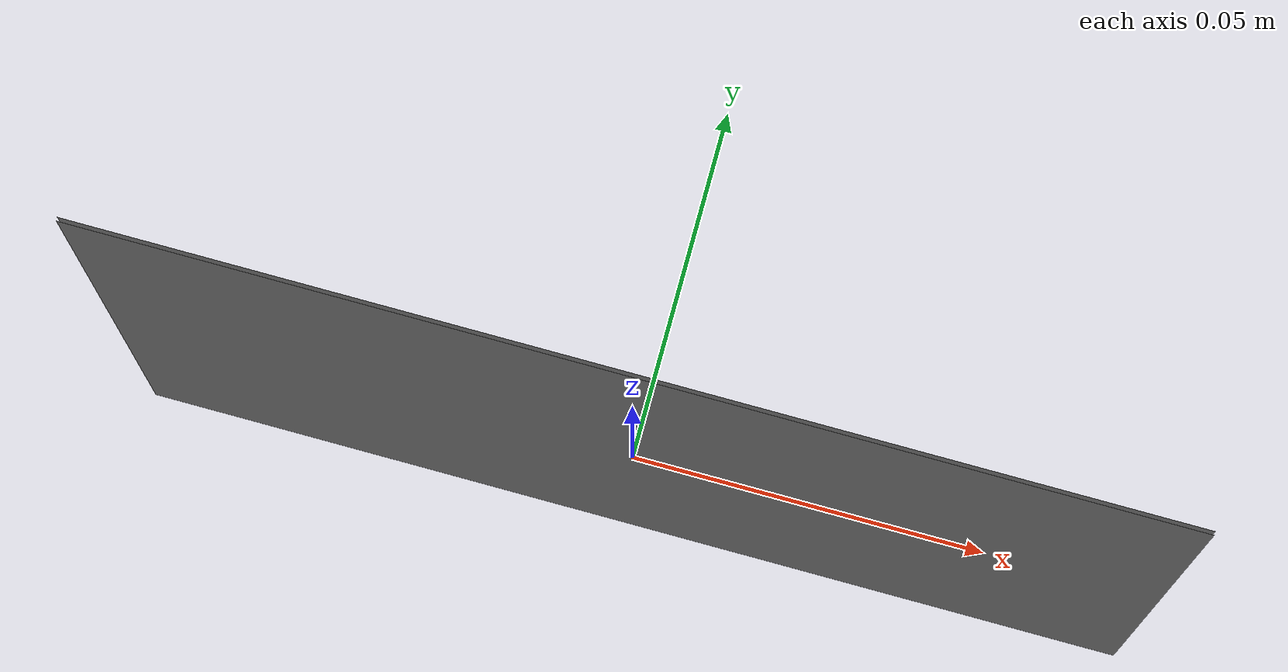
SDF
<?xml version="1.0" ?>
<sdf version="1.4">
  <model name="sign_ar_tag">
    <static>true</static>
    <link name="sign_link">
      <pose>0 0 0 1.5708 0 0</pose>
      <collision name="sign_collision">
        <geometry>
          <mesh>
            <uri>model://aruco_tags/meshes/sign_ar_tag_A.dae</uri>
            <scale>.5 .5 .5</scale>
          </mesh>
        </geometry>
      </collision>
      <visual name="sign_visual">
        <geometry>
          <mesh>
            <uri>model://aruco_tags/meshes/sign_ar_tag_A.dae</uri>
            <scale>.5 .5 .5</scale>
          </mesh>
        </geometry>
       <material>
          <script>
            <uri>model://aruco_tags/materials/scripts</uri>
            <uri>model://aruco_tags/materials/textures</uri>
            <name>ARTag/NumberA</name>
          </script>
        </material>
      </visual>
    </link>

 <link name="sign_link">
      <pose>0 0 0 1.5708 0 0</pose>
      <collision name="sign_collision">
        <geometry>
          <mesh>
            <uri>model://aruco_tags/meshes/sign_ar_tag_B.dae</uri>
            <scale>.5 .5 .5</scale>
          </mesh>
        </geometry>
      </collision>
      <visual name="sign_visual">
        <geometry>
          <mesh>
            <uri>model://aruco_tags/meshes/sign_ar_tag_B.dae</uri>
            <scale>.5 .5 .5</scale>
          </mesh>
        </geometry>
       <material>
          <script>
            <uri>model://aruco_tags/materials/scripts</uri>
            <uri>model://aruco_tags/materials/textures</uri>
            <name>ARTag/NumberB</name>
          </script>
        </material>
      </visual>
    </link>
  </model>
</sdf>
